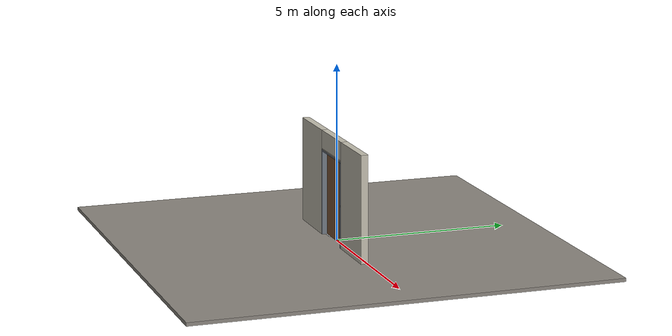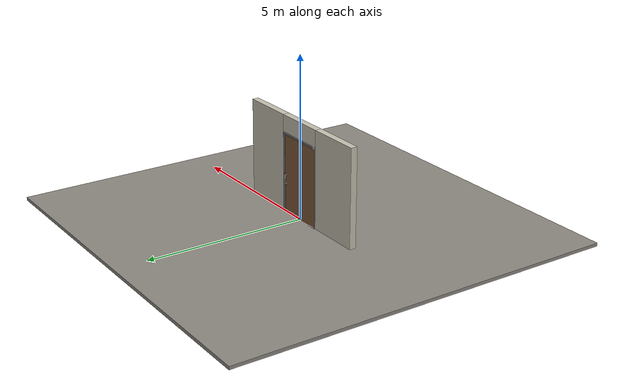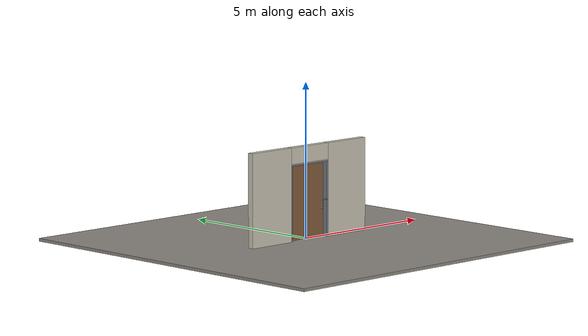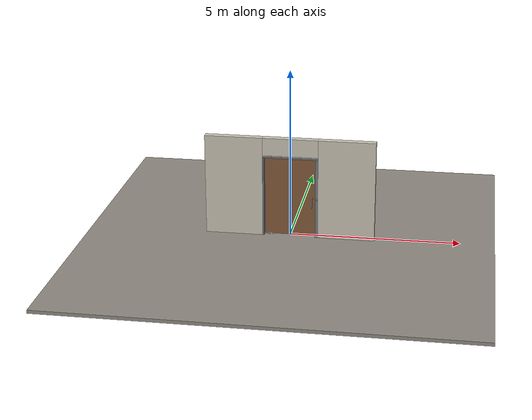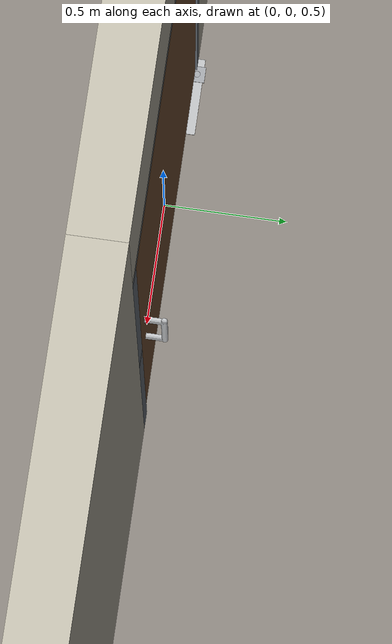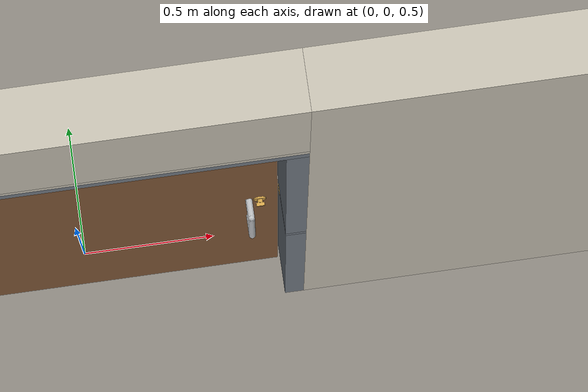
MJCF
<?xml version="1.0" ?>
<mujoco model="db0637_pivot_full">
  <compiler angle="radian" meshdir="../../hardware" texturedir="../../textures" autolimits="true" inertiafromgeom="false"/>
  <option timestep="0.002" integrator="implicitfast" cone="elliptic" impratio="10" noslip_iterations="3">
    <flag multiccd="enable"/>
  </option>
  <size memory="16M"/>
  <default>
    <geom condim="4" solref="0.005 1" solimp="0.95 0.99 0.001"/>
    <joint solreflimit="0.005 1" solimplimit="0.95 0.99 0.001"/>
    <tendon solreflimit="0.005 1"/>
    <equality solref="0.002 1"/>
  </default>
  <visual>
    <headlight ambient="0.4 0.4 0.4" diffuse="0.7 0.7 0.7" specular="0.2 0.2 0.2"/>
    <quality shadowsize="4096"/>
    <map znear="0.01" zfar="60"/>
  </visual>
  <asset>
    <mesh name="pull_f8d79d6331" file="pull_f8d79d6331.obj"/>
    <mesh name="thumbturn_eb5c9899a3" file="thumbturn_eb5c9899a3.obj"/>
    <material name="mat_floor" rgba="0.55 0.53 0.5 1" specular="0.2" shininess="0.15" reflectance="0"/>
    <material name="mat_wall" rgba="0.78 0.76 0.7 1" specular="0.2" shininess="0.1" reflectance="0"/>
    <material name="mat_leaf" rgba="0.504 0.347 0.219 1" specular="0.2" shininess="0.5" reflectance="0"/>
    <material name="mat_hinge" rgba="0.65 0.66 0.68 1" specular="0.74" shininess="0.5" reflectance="0.36"/>
    <material name="mat_op_stainless" rgba="0.75 0.76 0.77 1" specular="0.8" shininess="0.65" reflectance="0.4"/>
    <material name="mat_deadbolt" rgba="0.85 0.66 0.3 1" specular="0.8" shininess="0.75" reflectance="0.4"/>
    <material name="mat_frame" rgba="0.45 0.48 0.52 1" specular="0.32" shininess="0.6" reflectance="0.08"/>
    <material name="mat_closer" rgba="0.75 0.76 0.77 1" specular="0.8" shininess="0.65" reflectance="0.4"/>
    <texture name="skybox" type="skybox" builtin="gradient" rgb1="0.6 0.7 0.85" rgb2="0.9 0.92 0.95" width="256" height="256"/>
  </asset>
  <worldbody>
    <light name="sun" pos="1.5 -2.5 4" dir="-0.3 0.5 -0.8" directional="true" diffuse="0.8 0.8 0.8" specular="0.3 0.3 0.3" castshadow="true"/>
    <light name="fill" pos="-1.5 2.5 3" dir="0.3 -0.5 -0.7" directional="true" diffuse="0.35 0.35 0.4" castshadow="false"/>
    <camera name="robot_view" pos="0 -2.95675 2.01415" xyaxes="1 0 0 0 0.26963 0.962964" fovy="52"/>
    <camera name="far_view" pos="0 2.81575 2.01415" xyaxes="-1 0 0 0 -0.26963 0.962964" fovy="52"/>
    <camera name="iso" pos="2.19355 -2.49495 2.47595" xyaxes="0.741536 0.670913 0 -0.242917 0.268487 0.932151" fovy="46"/>
    <camera name="detail_handle" pos="0.822 -0.8975 1.33" xyaxes="0.97561 0.219512 0 -0.070934 0.315262 0.94635" fovy="38"/>
    <geom name="floor" type="box" size="6 6 0.05" pos="0 0 -0.05" material="mat_floor" group="0" contype="1" conaffinity="1" friction="0.8 0.005 0.0001" density="2400"/>
    <geom name="wall_left" type="box" size="0.8495 0.1 1.506" pos="-1.6505 -0.0705 1.506" material="mat_wall" group="0" contype="1" conaffinity="1" friction="0.6 0.005 0.0001" density="800"/>
    <geom name="wall_right" type="box" size="0.8345 0.1 1.506" pos="1.6655 -0.0705 1.506" material="mat_wall" group="0" contype="1" conaffinity="1" friction="0.6 0.005 0.0001" density="800"/>
    <geom name="wall_header" type="box" size="0.816 0.1 0.2625" pos="0.015 -0.0705 2.7495" material="mat_wall" group="0" contype="1" conaffinity="1" friction="0.6 0.005 0.0001" density="800"/>
    <geom name="pivot_bottom_socket" type="box" size="0.035 0.035 0.008" pos="-0.737 0.0325 -0.002" material="mat_hinge" group="1" contype="0" conaffinity="0" density="7850"/>
    <geom name="pivot_top_bracket" type="box" size="0.035 0.035 0.0355" pos="-0.737 0.0325 2.4515" material="mat_hinge" group="1" contype="0" conaffinity="0" density="7850"/>
    <geom name="leaf_deadbolt_strike_b" type="box" size="0.0155 0.003 0.0005" pos="0.7555 0 1.1715" quat="-0.5 -0.5 0.5 0.5" material="mat_deadbolt" group="1" contype="0" conaffinity="0" density="7800"/>
    <geom name="leaf_deadbolt_strike_l" type="box" size="0.003 0.0155 0.0005" pos="0.7555 0.0125 1.19" quat="-0.5 -0.5 0.5 0.5" material="mat_deadbolt" group="1" contype="0" conaffinity="0" density="7800"/>
    <geom name="leaf_deadbolt_strike_t" type="box" size="0.0155 0.003 0.0005" pos="0.7555 0 1.2085" quat="-0.5 -0.5 0.5 0.5" material="mat_deadbolt" group="1" contype="0" conaffinity="0" density="7800"/>
    <geom name="leaf_deadbolt_strike_r" type="box" size="0.003 0.0155 0.0005" pos="0.7555 -0.0125 1.19" quat="-0.5 -0.5 0.5 0.5" material="mat_deadbolt" group="1" contype="0" conaffinity="0" density="7800"/>
    <geom name="jamb_hinge" type="box" size="0.0225 0.1 1.206" pos="-0.7785 -0.0705 1.206" material="mat_frame" group="0" contype="1" conaffinity="1" friction="0.6 0.005 0.0001" density="300"/>
    <geom name="strike_1190_wall_n" type="box" size="0.0375 0.0805 0.0155" pos="0.7935 -0.09 1.19" material="mat_frame" group="0" contype="1" conaffinity="1" friction="0.6 0.005 0.0001" density="300"/>
    <geom name="strike_1190_wall_p" type="box" size="0.0375 0.01 0.0155" pos="0.7935 0.0195 1.19" material="mat_frame" group="0" contype="1" conaffinity="1" friction="0.6 0.005 0.0001" density="300"/>
    <geom name="strike_1190_back" type="box" size="0.0228 0.0095 0.0155" pos="0.8082 0 1.19" material="mat_frame" group="0" contype="1" conaffinity="1" friction="0.6 0.005 0.0001" density="300"/>
    <geom name="jamb_strike_0" type="box" size="0.0375 0.1 0.58725" pos="0.7935 -0.0705 0.58725" material="mat_frame" group="0" contype="1" conaffinity="1" friction="0.6 0.005 0.0001" density="300"/>
    <geom name="jamb_strike_1" type="box" size="0.0375 0.1 0.60325" pos="0.7935 -0.0705 1.80875" material="mat_frame" group="0" contype="1" conaffinity="1" friction="0.6 0.005 0.0001" density="300"/>
    <geom name="jamb_head" type="box" size="0.816 0.1 0.0225" pos="0.015 -0.0705 2.4345" material="mat_frame" group="0" contype="1" conaffinity="1" friction="0.6 0.005 0.0001" density="300"/>
    <geom name="head_stud" type="box" size="0.816 0.1 0.015" pos="0.015 -0.0705 2.472" material="mat_wall" group="0" contype="1" conaffinity="1" friction="0.6 0.005 0.0001" density="500"/>
    <geom name="floor_spring_cover" type="box" size="0.17 0.06 0.002" pos="-0.636 0 0.002" material="mat_closer" group="1" contype="0" conaffinity="0" density="7900"/>
    <site name="approach_point" pos="0 -1.5 0" quat="1 0 0 0" size="0.05" rgba="0.2 0.9 0.2 0.5" group="4"/>
    <site name="goal_point" pos="0 1.5 0" quat="1 0 0 0" size="0.05" rgba="0.2 0.9 0.2 0.5" group="4"/>
    <site name="door_plane_center" pos="0 0 1.206" quat="1 0 0 0" size="0.02" rgba="0.2 0.9 0.2 0.5" group="4"/>
    <body name="leaf" pos="-0.756 0 0">
      <inertial pos="0.765675 0.000022 1.204795" mass="115.832694" quat="0.50179 0.501832 0.498162 -0.498204" diaginertia="22.305878423 54.657287501 76.886246517"/>
      <joint name="leaf_hinge" type="hinge" axis="0 0 1" pos="0.019 0.0325 0" limited="true" range="0 1.919862" damping="10.19429" frictionloss="1.205275" stiffness="50.986878" springref="-2.013459" armature="0.02"/>
      <geom name="leaf_slab" type="box" size="0.75 0.0225 1.2" pos="0.753 0 1.208" material="mat_leaf" group="0" contype="1" conaffinity="1" friction="0.4 0.005 0.0001" density="1"/>
      <geom name="pivot_bottom" type="cylinder" size="0.014 0.004" pos="0.019 0.0325 0.003" material="mat_hinge" group="1" contype="0" conaffinity="0" density="7850"/>
      <geom name="pivot_top" type="cylinder" size="0.014 0.004" pos="0.019 0.0325 2.412" material="mat_hinge" group="1" contype="0" conaffinity="0" density="7850"/>
      <geom name="leaf_pull_n" type="mesh" mesh="pull_f8d79d6331" pos="1.398 -0.0225 1.05" quat="0.707107 0.707107 0 0" material="mat_op_stainless" group="1" contype="0" conaffinity="0" density="3000"/>
      <geom name="leaf_pull_col_n" type="capsule" size="0.0125 0.13" pos="1.398 -0.0975 1.05" material="mat_op_stainless" group="3" contype="1" conaffinity="1" rgba="0.8 0.3 0.3 0.25" friction="0.7 0.01 0.0001" density="3000"/>
      <geom name="leaf_pull_p" type="mesh" mesh="pull_f8d79d6331" pos="1.398 0.0225 1.05" quat="-0.707107 0.707107 0 0" material="mat_op_stainless" group="1" contype="0" conaffinity="0" density="3000"/>
      <geom name="leaf_pull_col_p" type="capsule" size="0.0125 0.13" pos="1.398 0.0975 1.05" material="mat_op_stainless" group="3" contype="1" conaffinity="1" rgba="0.8 0.3 0.3 0.25" friction="0.7 0.01 0.0001" density="3000"/>
      <geom name="leaf_deadbolt_faceplate" type="box" size="0.0006 0.014 0.0245" pos="1.5024 0 1.19" material="mat_deadbolt" group="1" contype="0" conaffinity="0" density="8500"/>
      <site name="leaf_pull_grip_n" pos="1.398 -0.0975 1.05" quat="1 0 0 0" size="0.012" rgba="0.2 0.9 0.2 0.5" group="4"/>
      <site name="leaf_pull_grip_p" pos="1.398 0.0975 1.05" quat="1 0 0 0" size="0.012" rgba="0.2 0.9 0.2 0.5" group="4"/>
      <site name="leaf_edge_mid" pos="1.503 0 1.2" quat="1 0 0 0" size="0.02" rgba="0.2 0.9 0.2 0.5" group="4"/>
      <body name="leaf_deadbolt" pos="1.503 0 1.19">
        <inertial pos="-0.0277 0 0" mass="0.18836" quat="0 0 0.707107 0.707107" diaginertia="0.000013829 0.000052194 0.000057986"/>
        <joint name="leaf_deadbolt_slide" type="slide" axis="-1 0 0" limited="true" range="0 0.0254" damping="5" frictionloss="1.5" armature="0.1" ref="0.0254"/>
        <geom name="leaf_deadbolt_box" type="box" size="0.0277 0.008 0.0125" pos="-0.0277 0 0" material="mat_deadbolt" group="0" contype="1" conaffinity="1" friction="0.3 0.005 0.0001" density="8500"/>
      </body>
      <body name="leaf_deadbolt_thumbturn" pos="1.438 -0.0225 1.19">
        <inertial pos="0 -0.012928 0" mass="0.178946" quat="0.000001 0.707107 -0.707107 -0.000001" diaginertia="0.000026045 0.000026215 0.000032438"/>
        <joint name="leaf_deadbolt_thumbturn_hinge" type="hinge" axis="0 1 0" limited="true" range="0 1.5708" damping="0.05" frictionloss="0.3" armature="0.005" ref="1.5708"/>
        <geom name="leaf_deadbolt_thumbturn_mesh" type="mesh" mesh="thumbturn_eb5c9899a3" pos="0 0 0" quat="0.499999 0.499999 0.500001 -0.500001" material="mat_deadbolt" group="0" contype="1" conaffinity="1" friction="0.6 0.005 0.0001" density="7100"/>
        <geom name="leaf_deadbolt_thumbturn_col" type="box" size="0.006 0.012 0.016" pos="0 -0.02 0" quat="0.707105 0 0.707108 0" material="mat_deadbolt" group="3" contype="1" conaffinity="1" rgba="0.8 0.3 0.3 0.25" friction="0.6 0.005 0.0001" density="7100"/>
      </body>
    </body>
  </worldbody>
  <equality>
    <joint name="leaf_deadbolt_couple" joint1="leaf_deadbolt_slide" joint2="leaf_deadbolt_thumbturn_hinge" polycoef="0 0.01617 0 0 0" active="true"/>
  </equality>
  <contact>
    <exclude body1="leaf_deadbolt" body2="leaf_deadbolt_thumbturn"/>
  </contact>
  <sensor>
    <jointpos name="leaf_hinge_pos" joint="leaf_hinge"/>
    <jointvel name="leaf_hinge_vel" joint="leaf_hinge"/>
    <jointpos name="leaf_deadbolt_slide_pos" joint="leaf_deadbolt_slide"/>
    <jointvel name="leaf_deadbolt_slide_vel" joint="leaf_deadbolt_slide"/>
    <jointpos name="leaf_deadbolt_thumbturn_hinge_pos" joint="leaf_deadbolt_thumbturn_hinge"/>
    <jointvel name="leaf_deadbolt_thumbturn_hinge_vel" joint="leaf_deadbolt_thumbturn_hinge"/>
  </sensor>
</mujoco>
